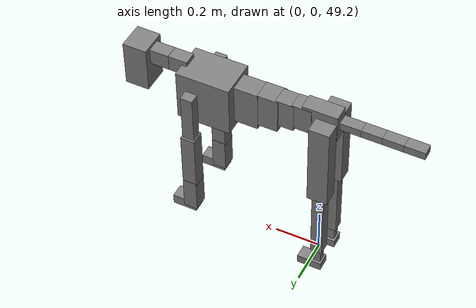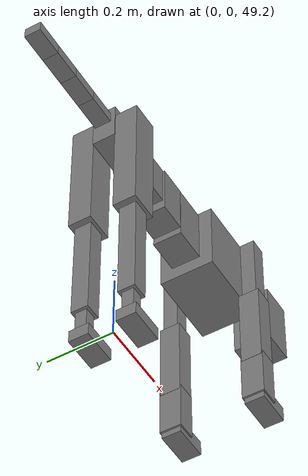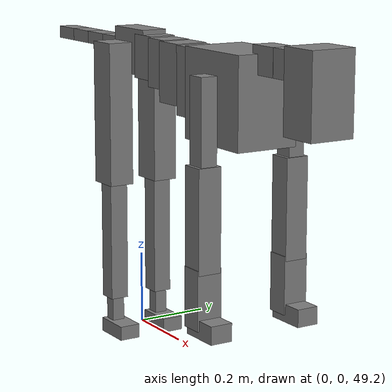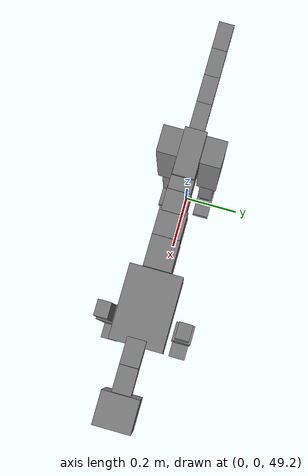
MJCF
<mujoco model="dog">

    <default>
        <joint armature="0.02" stiffness="1" damping="0.2" limited="true"/>
        <geom condim="3" friction="1 0.05 0.05" margin="0.01"/>
        <motor ctrllimited="true" ctrlrange="-1.0 1.0" forcelimited="true" gear="50"/>
    </default>

    <compiler inertiafromgeom="true" angle="radian"/>

    <option timestep="0.016" iterations="50" tolerance="1e-10" solver="Newton" jacobian="dense" cone="pyramidal"/>

    <size nconmax="20000" njmax="60000" nstack="5000000"/>
    <visual>
        <map force="0.1" zfar="30"/>
        <rgba haze="0.15 0.25 0.35 1"/>
        <quality shadowsize="2048"/>
        <global offwidth="800" offheight="800"/>
    </visual>

    <asset>
        <texture type="skybox" builtin="gradient" rgb1="0.3 0.5 0.7" rgb2="0 0 0" width="512" height="512"/>
        <texture name="texplane" type="2d" builtin="checker" rgb1=".2 .3 .4" rgb2=".1 0.15 0.2" width="512" height="512"
                 mark="cross" markrgb=".8 .8 .8"/>
        <texture name="texgeom" type="cube" builtin="flat" mark="cross" width="127" height="1278" rgb1="0.8 0.6 0.4"
                 rgb2="0.8 0.6 0.4" markrgb="1 1 1" random="0.01"/>

        <material name="matplane" reflectance="0.3" texture="texplane" texrepeat="1 1" texuniform="true"/>
        <material name="matgeom" texture="texgeom" texuniform="true" rgba="0.8 0.6 .4 1"/>
    </asset>

    <worldbody>
        <geom name="floor" pos="0 0 0" size="0 0 .25" type="plane" material="matplane" condim="3"/>

        <light directional="false" diffuse=".2 .2 .2" specular="0 0 0" pos="0 0 5" dir="0 0 -1" castshadow="false"/>
        <light mode="targetbodycom" target="torso" directional="false" diffuse=".8 .8 .8" specular="0.3 0.3 0.3"
               pos="0 0 4.0" dir="0 0 -1"/>

        <body name="root" pos="0 0 50">
            <freejoint name="root_1"/>
            <geom type="box" pos="0 0 -0.02" size="0.0774  0.0358  0.063" density="2030"/>

            <body name="spine1" pos="0.054 0 0">
                <joint name="spine1_y" axis="0 1 0" range="0 0.7" limited="true"/>
                <geom type="box" pos="0.02375 0 -0.03" size="0.04375  0.0375  0.05985" density="2030"/>

                <body name="spine2" pos="0.0612 0 0">
                    <joint name="spine2_y" axis="0 1 0" range="-0.15 0.15" limited="true"/>
                    <geom type="box" pos="0.03555  0  -0.04" size="0.04055  0.039  0.06615" density="2030"/>

                    <body name="spine3" pos="0.0730 0 0">
                        <joint name="spine3_y" axis="0 1 0" range="-0.15 0.15" limited="true"/>
                        <geom type="box" pos="0.03555  0  -0.057" size="0.04555  0.0445  0.081" density="2030"/>

                        <body name="spine4" pos="0.0780 0 0">
                            <joint name="spine4_y" axis="0 1 0" range="-0.15 0.15" limited="true"/>
                            <geom type="box" pos="0.05265  0  -0.07" size="0.05265  0.045  0.09135" density="2030"/>

                            <body name="torso" pos="0.1082 0 0">
                                <joint name="torso_y" axis="0 1 0" range="-0.15 0.15" limited="true"/>
                                <geom type="box" pos="0.11925  0  -0.085" size="0.11925  0.085  0.11745"
                                      density="2030"/>

                                <body name="neck1" pos="0.2160  0   0.0180">
                                    <joint name="neck1_y" axis="0 1 0" range="-1.2  -1" limited="true"/>
                                    <geom type="box" pos="0.0423  0  0" size="0.0423  0.03  0.036" density="2325"/>

                                    <body name="neck2" pos="0.0853  0  0">
                                        <joint name="neck2_y" axis="0 1 0" range="0.1  0" limited="true"/>
                                        <geom type="box" pos="0.0423  0  0" size="0.0423  0.03  0.036" density="2325"/>

                                        <body name="head" pos="0.0853  0  0">
                                            <joint name="head_y" axis="0 1 0" range="-0.3  -0.2" limited="true"/>
                                            <geom type="box" pos="0.0531  0  -0.055" size="0.0531  0.06  0.1044"
                                                  density="4030"/>

                                        </body>
                                    </body>
                                </body>

                                <body name="front_shoulder" pos="0.156  0   -0.0480">
                                    <joint name="front_shoulder_y" axis="0 1 0" range="-1 1.5" limited="true"/>
                                    <geom type="box" pos="0 0.13 -0.0966" size="0.0262  0.0224  0.1232" density="1158"/>
                                    <geom type="box" pos="0 -0.13 -0.0966" size="0.0262  0.0224  0.1232"
                                          density="1158"/>

                                    <body name="front_elbow" pos="0  0  -0.1932">
                                        <joint name="front_elbow_y" axis="0 1 0" range="-2 0" limited="true"/>
                                        <geom type="box" pos="0 0.13 -0.1334" size="0.0312  0.0319  0.1334"
                                              density="1081"/>
                                        <geom type="box" pos="0 -0.13 -0.1334" size="0.0312  0.0319  0.1334"
                                              density="1081"/>

                                        <body name="front_wrist" pos="0  0  -0.2668">
                                            <joint name="front_wrist_y" axis="0 1 0" range="-0.2 0" limited="true"/>
                                            <geom type="box" pos="0 0.13 -0.0642" size="0.0307  0.0341  0.0773"
                                                  density="1664"/>
                                            <geom type="box" pos="0 -0.13 -0.0642" size="0.0307  0.0341  0.0773"
                                                  density="1664"/>

                                            <body name="front_finger_end" pos="0  0  -0.1283">
                                                <joint name="front_finger_y" axis="0 1 0" range="-0.4 1"
                                                       limited="true"/>
                                                <geom type="box" pos="0.0301  0.13  -0.0085"
                                                      size="0.0551  0.0301  0.0235" density="1515"/>
                                                <geom type="box" pos="0.0301  -0.13  -0.0085"
                                                      size="0.0551  0.0301  0.0235" density="1515"/>

                                            </body>

                                        </body>
                                    </body>
                                </body>

                            </body>
                        </body>
                    </body>
                </body>
            </body>

            <body name="back_hip" pos="-0.03 0 -0.018">
                <joint name="back_hip_y" axis="0 1 0" range="-1.5 0.3" limited="true"/>
                <geom type="box" pos="0 0.07 -0.1755" size="0.0448  0.0351  0.1983" density="1154"/>
                <geom type="box" pos="0 -0.07 -0.1755" size="0.0448  0.0351  0.1983" density="1154"/>

                <body name="back_knee" pos="0  0  -0.3510">
                    <joint name="back_knee_y" axis="0 1 0" range="0 2.8" limited="true"/>
                    <geom type="box" pos="0 0.07 -0.1693" size="0.0262  0.0258  0.1849" density="1227"/>
                    <geom type="box" pos="0 -0.07 -0.1693" size="0.0262  0.0258  0.1849" density="1227"/>

                    <body name="back_ankle" pos="0  0  -0.3386">
                        <joint name="back_ankle_y" axis="0 1 0" range="-2.2 0" limited="true"/>
                        <geom type="box" pos="0 0.07 -0.0484" size="0.0174  0.0174  0.0596" density="1284"/>
                        <geom type="box" pos="0 -0.07 -0.0484" size="0.0174  0.0174  0.0596" density="1284"/>

                        <body name="back_toe_end" pos="0  0  -0.0968">
                            <joint name="back_toe_y" axis="0 1 0" range="-0.4 1" limited="true"/>
                            <geom type="box" pos="0.0296  0.07  -0.0046" size="0.0542  0.0296  0.0196" density="1515"/>
                            <geom type="box" pos="0.0296  -0.07  -0.0046" size="0.0542  0.0296  0.0196" density="1515"/>

                        </body>
                    </body>
                </body>
            </body>

            <body name="tail1" pos="-0.074 0 -0.006">
                <joint name="tail1_y" axis="0 1 0" range="-0.2 0.2" limited="true"/>
                <geom type="box" pos="-0.0536  0  0" size="0.045  0.025  0.0175" density="1587"/>

                <body name="tail2" pos="-0.09 0 0">
                    <joint name="tail2_y" axis="0 1 0" range="-0.2 0.2" limited="true"/>
                    <geom type="box" pos="-0.0536  0  0" size="0.045  0.025  0.0175" density="1587"/>

                    <body name="tail3" pos="-0.09 0 0">
                        <joint name="tail3_y" axis="0 1 0" range="-0.2 0.2" limited="true"/>
                        <geom type="box" pos="-0.0536  0  0" size="0.045  0.025  0.0175" density="1587"/>

                        <body name="tail4" pos="-0.09 0 0">
                            <joint name="tail4_y" axis="0 1 0" range="-0.2 0.2" limited="true"/>
                            <geom type="box" pos="-0.0536  0  0" size="0.045  0.025  0.0175" density="1587"/>

                        </body>
                    </body>
                </body>
            </body>
        </body>
    </worldbody>

    <actuator>
        <motor joint="spine1_y" forcerange="-150 150     "/>
        <motor joint="spine2_y" forcerange="-150 150     "/>
        <motor joint="spine3_y" forcerange="-150 150     "/>
        <motor joint="spine4_y" forcerange="-150 150     "/>
        <motor joint="torso_y" forcerange="-150 150     "/>
        <motor joint="neck1_y" forcerange="-100 100       "/>
        <motor joint="neck2_y" forcerange="-100 100       "/>
        <motor joint="head_y" forcerange="-150 150       "/>
        <motor joint="front_shoulder_y" forcerange="-140.45 108.59"/>
        <motor joint="front_elbow_y" forcerange="-197.89 134.13"/>
        <motor joint="front_wrist_y" forcerange="-125.54 147.64"/>
        <motor joint="front_finger_y" forcerange="-21.25 99.07"/>
        <motor joint="back_hip_y" forcerange="-318.58 349.95"/>
        <motor joint="back_knee_y" forcerange="-335.15 240.31"/>
        <motor joint="back_angle_y" forcerange="-113.72 63.96"/>
        <motor joint="back_toe_y" forcerange="-125.50 31.22"/>
        <motor joint="tail1_y" forcerange="-50 50     "/>
        <motor joint="tail2_y" forcerange="-50 50     "/>
        <motor joint="tail3_y" forcerange="-50 50     "/>
        <motor joint="tail4_y" forcerange="-50 50     "/>
    </actuator>
</mujoco>
